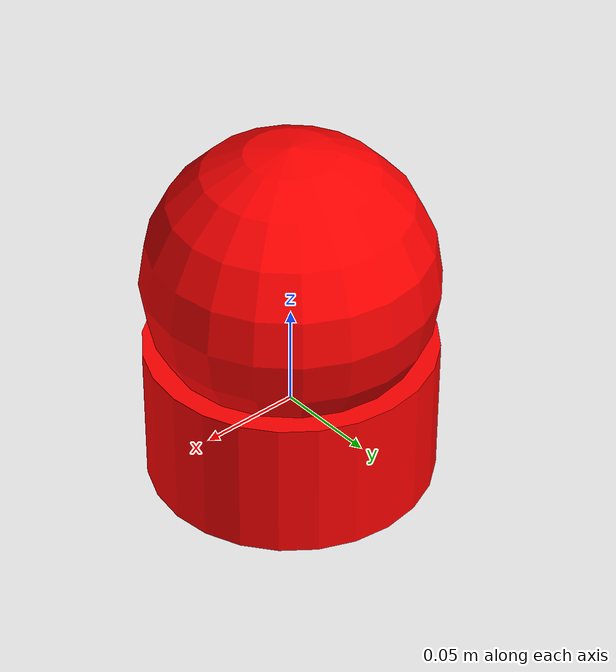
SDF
<?xml version="1.0"?>
<sdf version="1.8">

  <model name="spherical_mole">
    <link name="sphere_link">
      <!-- Inertial properties for the sphere -->
      <inertial>
        <mass>10.0</mass> <!-- Adjust mass as needed -->
        <pose>0 0 0 0 0 0</pose>
        <inertia>
          <ixx>0.1</ixx>  <!-- Adjust inertia values -->
          <ixy>0.0</ixy>
          <ixz>0.0</ixz>
          <iyy>0.1</iyy>
          <iyz>0.0</iyz>
          <izz>0.1</izz>
        </inertia>
      </inertial>

      <!-- Visual for the stick (handle) -->
    <visual name="stick_visual">
      <pose>0 0 0 0 0 0</pose>  <!-- Stick base pos, z = 3rd item -->
      <geometry>
        <cylinder>
          <radius>0.07</radius>  <!-- Thinner stick: reduce radius -->
          <length>0.07</length>   <!-- Longer stick: increase length -->
        </cylinder>
      </geometry>
      <material>
          <ambient>1.0 0.0 0.0 1</ambient>  <!-- Red -->
          <diffuse>1.0 0.0 0.0 1</diffuse>  <!-- Red -->
          <specular>0.5 0.5 0.5 1</specular> <!-- Specular highlight -->
      </material>
    </visual>

    <!-- Collision for the stick (handle) -->
    <collision name="stick_collision">
      <pose>0 0 0 0 0 0</pose>  <!-- Stick base pos, z = 3rd item -->
      <geometry>
        <cylinder>
          <radius>0.07</radius>  <!-- Thinner stick: reduce radius -->
          <length>0.07</length>   <!-- Longer stick: increase length -->
        </cylinder>
      </geometry>
      <drake:proximity_properties>
          <drake:compliant_hydroelastic/>
          <drake:mesh_resolution_hint>0.01</drake:mesh_resolution_hint>
          <drake:hydroelastic_modulus>1.0e8</drake:hydroelastic_modulus>
        </drake:proximity_properties>
    </collision>

      <!-- Visual properties for the sphere -->
      <visual name="visual">
        <pose>0 0 0.07 0 0 0</pose>
        <geometry>
          <sphere>
            <radius>0.07</radius>  <!-- Adjust radius -->
          </sphere>
        </geometry>
        <material>
          <ambient>1.0 0.0 0.0 1</ambient>  <!-- Red -->
          <diffuse>1.0 0.0 0.0 1</diffuse>  <!-- Red -->
          <specular>0.5 0.5 0.5 1</specular> <!-- Specular highlight -->
        </material>
      </visual>

      <!-- Collision properties for the sphere -->
      <collision name="collision">
        <pose>0 0 0.07 0 0 0</pose>
        <geometry>
          <sphere>
            <radius>0.07</radius>  <!-- Adjust radius -->
          </sphere>
        </geometry>
        <drake:proximity_properties>
          <!-- Adding hydroelastic properties -->
          <drake:compliant_hydroelastic/>
          <drake:mesh_resolution_hint>0.01</drake:mesh_resolution_hint>
          <drake:hydroelastic_modulus>1.0e8</drake:hydroelastic_modulus>
        </drake:proximity_properties>
      </collision>
    </link>
  </model>

</sdf>
